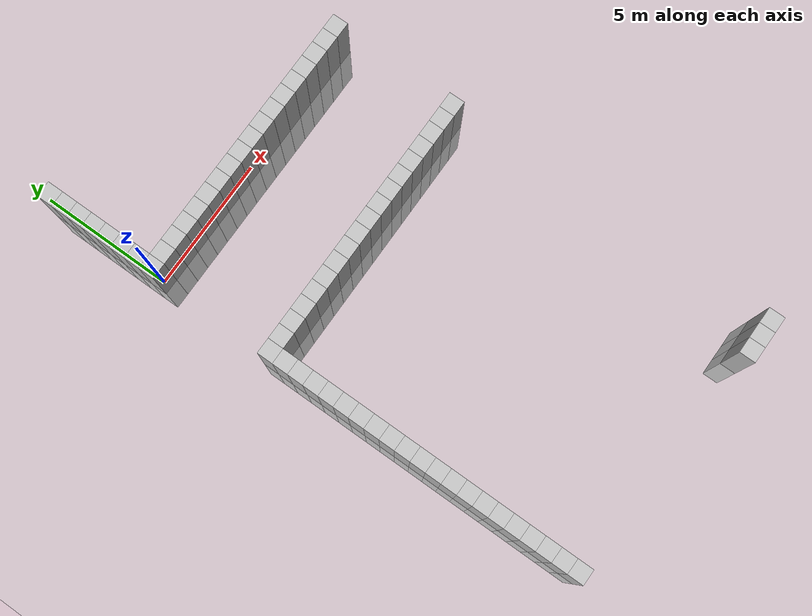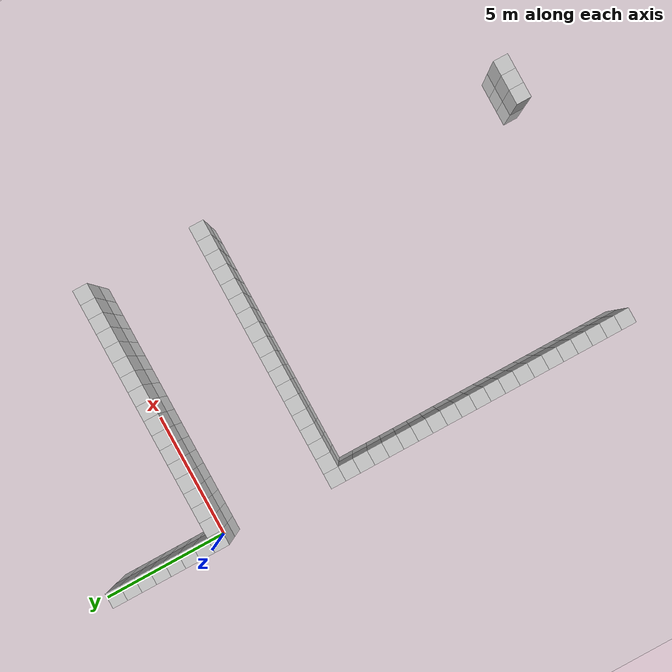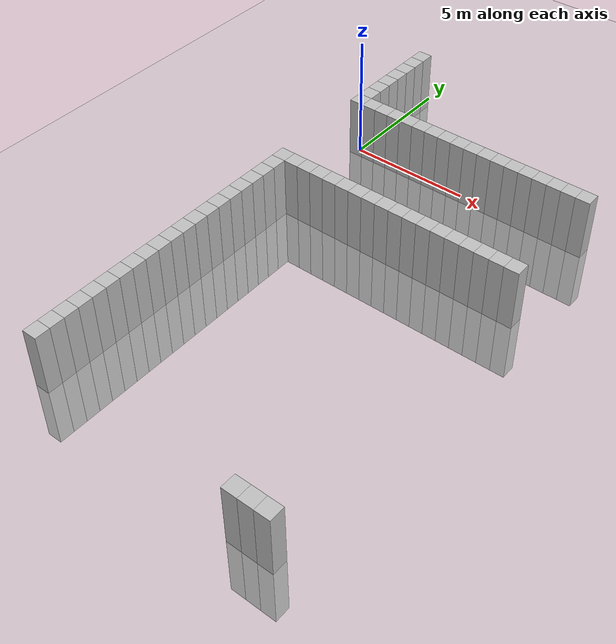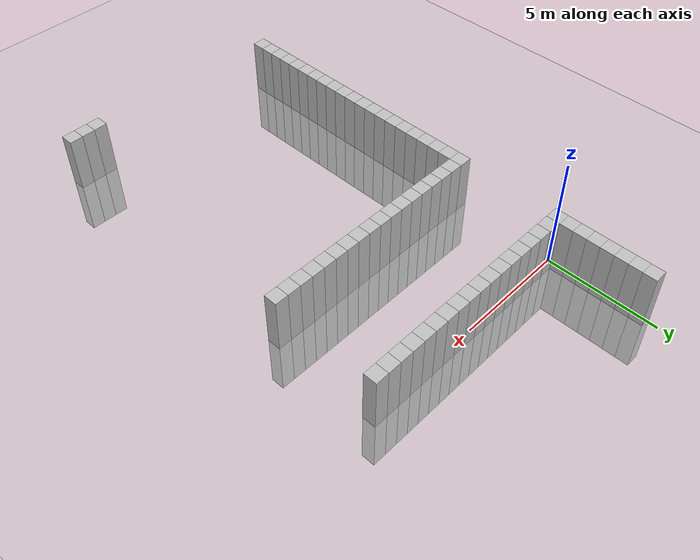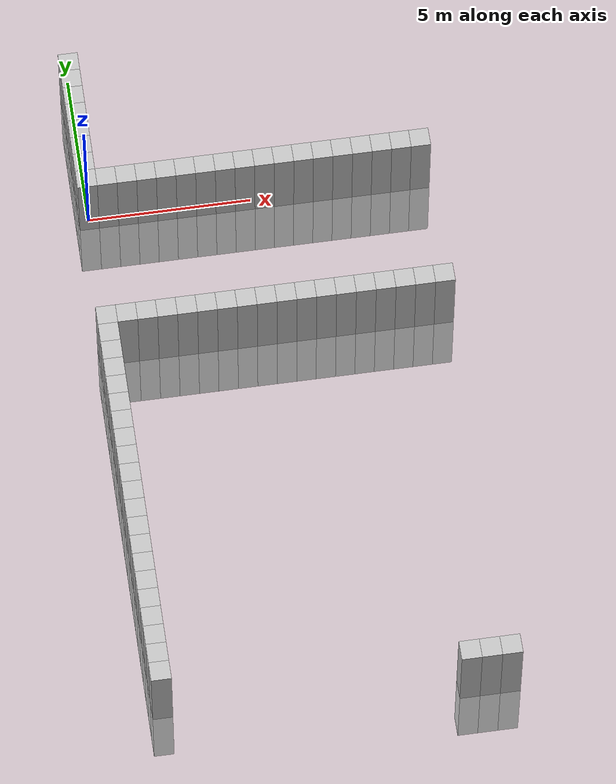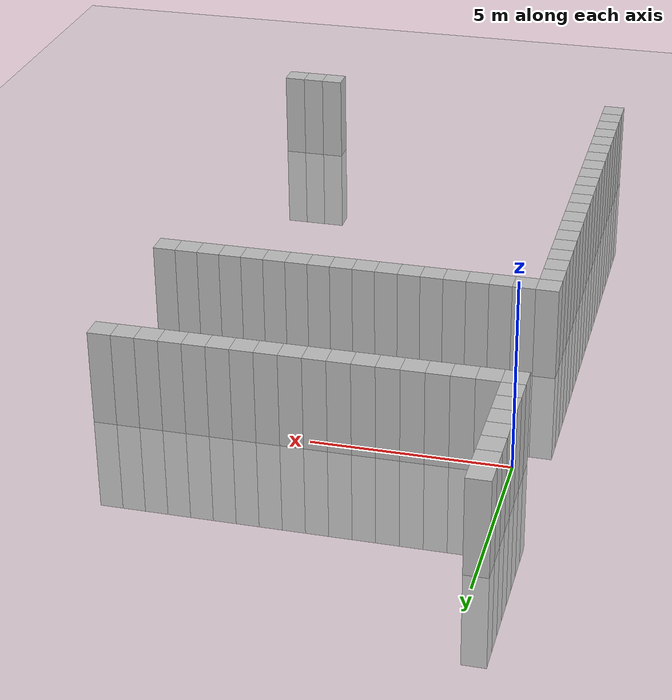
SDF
<sdf version="1.6">
 <world name="default">
  <model name="ground_plane">
   <static>1</static>
   <link name="link">
    <collision name="collision">
     <geometry><plane><normal>0 0 1</normal><size>100 100</size></plane></geometry>
     <surface><friction><ode><mu>100</mu><mu2>50</mu2></ode></friction></surface>
    </collision>
    <visual name="visual">
     <cast_shadows>0</cast_shadows>
     <geometry><plane><normal>0 0 1</normal><size>100 100</size></plane></geometry>
     <material>
      <script><uri>file://media/materials/scripts/gazebo.material</uri><name>Gazebo/Grey</name></script>
     </material>
    </visual>
   </link>
  </model>
  <model name="unit_cylinder_0">
   <static>1</static>
   <link name="link">
    <inertial>
     <mass>1</mass>
     <inertia><ixx>0.145833</ixx><ixy>0</ixy><ixz>0</ixz><iyy>0.145833</iyy><iyz>0</iyz><izz>0.125</izz></inertia>
    </inertial>
    <collision name="collision"><geometry><box><size>0.6 0.6 5</size></box></geometry></collision>
    <visual name="visual">
     <geometry><box><size>0.6 0.6 5</size></box></geometry>
     <material><ambient>0.753 0.753 0.753 1</ambient><diffuse>0.753 0.753 0.753 1</diffuse></material>
     <material>
      <script><name>Gazebo/Grey</name><uri>file://media/materials/scripts/gazebo.material</uri></script>
     </material>
    </visual>
   </link>
  </model>
  <model name="unit_cylinder_1">
   <static>1</static>
   <pose>0 0.6 0 0 -0 0</pose>
   <link name="link">
    <inertial>
     <mass>1</mass>
     <inertia><ixx>0.145833</ixx><ixy>0</ixy><ixz>0</ixz><iyy>0.145833</iyy><iyz>0</iyz><izz>0.125</izz></inertia>
    </inertial>
    <collision name="collision"><geometry><box><size>0.6 0.6 5</size></box></geometry></collision>
    <visual name="visual">
     <geometry><box><size>0.6 0.6 5</size></box></geometry>
     <material><ambient>0.753 0.753 0.753 1</ambient><diffuse>0.753 0.753 0.753 1</diffuse></material>
     <material>
      <script><name>Gazebo/Grey</name><uri>file://media/materials/scripts/gazebo.material</uri></script>
     </material>
    </visual>
   </link>
  </model>
  <model name="unit_cylinder_2">
   <static>1</static>
   <pose>0 1.2 0 0 -0 0</pose>
   <link name="link">
    <inertial>
     <mass>1</mass>
     <inertia><ixx>0.145833</ixx><ixy>0</ixy><ixz>0</ixz><iyy>0.145833</iyy><iyz>0</iyz><izz>0.125</izz></inertia>
    </inertial>
    <collision name="collision"><geometry><box><size>0.6 0.6 5</size></box></geometry></collision>
    <visual name="visual">
     <geometry><box><size>0.6 0.6 5</size></box></geometry>
     <material><ambient>0.753 0.753 0.753 1</ambient><diffuse>0.753 0.753 0.753 1</diffuse></material>
     <material>
      <script><name>Gazebo/Grey</name><uri>file://media/materials/scripts/gazebo.material</uri></script>
     </material>
    </visual>
   </link>
  </model>
  <model name="unit_cylinder_3">
   <static>1</static>
   <pose>0 1.8 0 0 -0 0</pose>
   <link name="link">
    <inertial>
     <mass>1</mass>
     <inertia><ixx>0.145833</ixx><ixy>0</ixy><ixz>0</ixz><iyy>0.145833</iyy><iyz>0</iyz><izz>0.125</izz></inertia>
    </inertial>
    <collision name="collision"><geometry><box><size>0.6 0.6 5</size></box></geometry></collision>
    <visual name="visual">
     <geometry><box><size>0.6 0.6 5</size></box></geometry>
     <material><ambient>0.753 0.753 0.753 1</ambient><diffuse>0.753 0.753 0.753 1</diffuse></material>
     <material>
      <script><name>Gazebo/Grey</name><uri>file://media/materials/scripts/gazebo.material</uri></script>
     </material>
    </visual>
   </link>
  </model>
  <model name="unit_cylinder_4">
   <static>1</static>
   <pose>0 2.4 0 0 -0 0</pose>
   <link name="link">
    <inertial>
     <mass>1</mass>
     <inertia><ixx>0.145833</ixx><ixy>0</ixy><ixz>0</ixz><iyy>0.145833</iyy><iyz>0</iyz><izz>0.125</izz></inertia>
    </inertial>
    <collision name="collision"><geometry><box><size>0.6 0.6 5</size></box></geometry></collision>
    <visual name="visual">
     <geometry><box><size>0.6 0.6 5</size></box></geometry>
     <material><ambient>0.753 0.753 0.753 1</ambient><diffuse>0.753 0.753 0.753 1</diffuse></material>
     <material>
      <script><name>Gazebo/Grey</name><uri>file://media/materials/scripts/gazebo.material</uri></script>
     </material>
    </visual>
   </link>
  </model>
  <model name="unit_cylinder_5">
   <static>1</static>
   <pose>0 3 0 0 -0 0</pose>
   <link name="link">
    <inertial>
     <mass>1</mass>
     <inertia><ixx>0.145833</ixx><ixy>0</ixy><ixz>0</ixz><iyy>0.145833</iyy><iyz>0</iyz><izz>0.125</izz></inertia>
    </inertial>
    <collision name="collision"><geometry><box><size>0.6 0.6 5</size></box></geometry></collision>
    <visual name="visual">
     <geometry><box><size>0.6 0.6 5</size></box></geometry>
     <material><ambient>0.753 0.753 0.753 1</ambient><diffuse>0.753 0.753 0.753 1</diffuse></material>
     <material>
      <script><name>Gazebo/Grey</name><uri>file://media/materials/scripts/gazebo.material</uri></script>
     </material>
    </visual>
   </link>
  </model>
  <model name="unit_cylinder_6">
   <static>1</static>
   <pose>0 3.6 0 0 -0 0</pose>
   <link name="link">
    <inertial>
     <mass>1</mass>
     <inertia><ixx>0.145833</ixx><ixy>0</ixy><ixz>0</ixz><iyy>0.145833</iyy><iyz>0</iyz><izz>0.125</izz></inertia>
    </inertial>
    <collision name="collision"><geometry><box><size>0.6 0.6 5</size></box></geometry></collision>
    <visual name="visual">
     <geometry><box><size>0.6 0.6 5</size></box></geometry>
     <material><ambient>0.753 0.753 0.753 1</ambient><diffuse>0.753 0.753 0.753 1</diffuse></material>
     <material>
      <script><name>Gazebo/Grey</name><uri>file://media/materials/scripts/gazebo.material</uri></script>
     </material>
    </visual>
   </link>
  </model>
  <model name="unit_cylinder_7">
   <static>1</static>
   <pose>0 4.2 0 0 -0 0</pose>
   <link name="link">
    <inertial>
     <mass>1</mass>
     <inertia><ixx>0.145833</ixx><ixy>0</ixy><ixz>0</ixz><iyy>0.145833</iyy><iyz>0</iyz><izz>0.125</izz></inertia>
    </inertial>
    <collision name="collision"><geometry><box><size>0.6 0.6 5</size></box></geometry></collision>
    <visual name="visual">
     <geometry><box><size>0.6 0.6 5</size></box></geometry>
     <material><ambient>0.753 0.753 0.753 1</ambient><diffuse>0.753 0.753 0.753 1</diffuse></material>
     <material>
      <script><name>Gazebo/Grey</name><uri>file://media/materials/scripts/gazebo.material</uri></script>
     </material>
    </visual>
   </link>
  </model>
  <model name="unit_cylinder_43">
   <static>1</static>
   <pose>0.6 0 0 0 -0 0</pose>
   <link name="link">
    <inertial>
     <mass>1</mass>
     <inertia><ixx>0.145833</ixx><ixy>0</ixy><ixz>0</ixz><iyy>0.145833</iyy><iyz>0</iyz><izz>0.125</izz></inertia>
    </inertial>
    <collision name="collision"><geometry><box><size>0.6 0.6 5</size></box></geometry></collision>
    <visual name="visual">
     <geometry><box><size>0.6 0.6 5</size></box></geometry>
     <material><ambient>0.753 0.753 0.753 1</ambient><diffuse>0.753 0.753 0.753 1</diffuse></material>
     <material>
      <script><name>Gazebo/Grey</name><uri>file://media/materials/scripts/gazebo.material</uri></script>
     </material>
    </visual>
   </link>
  </model>
  <model name="unit_cylinder_46">
   <static>1</static>
   <pose>1.2 0 0 0 -0 0</pose>
   <link name="link">
    <inertial>
     <mass>1</mass>
     <inertia><ixx>0.145833</ixx><ixy>0</ixy><ixz>0</ixz><iyy>0.145833</iyy><iyz>0</iyz><izz>0.125</izz></inertia>
    </inertial>
    <collision name="collision"><geometry><box><size>0.6 0.6 5</size></box></geometry></collision>
    <visual name="visual">
     <geometry><box><size>0.6 0.6 5</size></box></geometry>
     <material><ambient>0.753 0.753 0.753 1</ambient><diffuse>0.753 0.753 0.753 1</diffuse></material>
     <material>
      <script><name>Gazebo/Grey</name><uri>file://media/materials/scripts/gazebo.material</uri></script>
     </material>
    </visual>
   </link>
  </model>
  <model name="unit_cylinder_49">
   <static>1</static>
   <pose>1.8 0 0 0 -0 0</pose>
   <link name="link">
    <inertial>
     <mass>1</mass>
     <inertia><ixx>0.145833</ixx><ixy>0</ixy><ixz>0</ixz><iyy>0.145833</iyy><iyz>0</iyz><izz>0.125</izz></inertia>
    </inertial>
    <collision name="collision"><geometry><box><size>0.6 0.6 5</size></box></geometry></collision>
    <visual name="visual">
     <geometry><box><size>0.6 0.6 5</size></box></geometry>
     <material><ambient>0.753 0.753 0.753 1</ambient><diffuse>0.753 0.753 0.753 1</diffuse></material>
     <material>
      <script><name>Gazebo/Grey</name><uri>file://media/materials/scripts/gazebo.material</uri></script>
     </material>
    </visual>
   </link>
  </model>
  <model name="unit_cylinder_52">
   <static>1</static>
   <pose>2.4 0 0 0 -0 0</pose>
   <link name="link">
    <inertial>
     <mass>1</mass>
     <inertia><ixx>0.145833</ixx><ixy>0</ixy><ixz>0</ixz><iyy>0.145833</iyy><iyz>0</iyz><izz>0.125</izz></inertia>
    </inertial>
    <collision name="collision"><geometry><box><size>0.6 0.6 5</size></box></geometry></collision>
    <visual name="visual">
     <geometry><box><size>0.6 0.6 5</size></box></geometry>
     <material><ambient>0.753 0.753 0.753 1</ambient><diffuse>0.753 0.753 0.753 1</diffuse></material>
     <material>
      <script><name>Gazebo/Grey</name><uri>file://media/materials/scripts/gazebo.material</uri></script>
     </material>
    </visual>
   </link>
  </model>
  <model name="unit_cylinder_55">
   <static>1</static>
   <pose>3 0 0 0 -0 0</pose>
   <link name="link">
    <inertial>
     <mass>1</mass>
     <inertia><ixx>0.145833</ixx><ixy>0</ixy><ixz>0</ixz><iyy>0.145833</iyy><iyz>0</iyz><izz>0.125</izz></inertia>
    </inertial>
    <collision name="collision"><geometry><box><size>0.6 0.6 5</size></box></geometry></collision>
    <visual name="visual">
     <geometry><box><size>0.6 0.6 5</size></box></geometry>
     <material><ambient>0.753 0.753 0.753 1</ambient><diffuse>0.753 0.753 0.753 1</diffuse></material>
     <material>
      <script><name>Gazebo/Grey</name><uri>file://media/materials/scripts/gazebo.material</uri></script>
     </material>
    </visual>
   </link>
  </model>
  <model name="unit_cylinder_58">
   <static>1</static>
   <pose>3.6 0 0 0 -0 0</pose>
   <link name="link">
    <inertial>
     <mass>1</mass>
     <inertia><ixx>0.145833</ixx><ixy>0</ixy><ixz>0</ixz><iyy>0.145833</iyy><iyz>0</iyz><izz>0.125</izz></inertia>
    </inertial>
    <collision name="collision"><geometry><box><size>0.6 0.6 5</size></box></geometry></collision>
    <visual name="visual">
     <geometry><box><size>0.6 0.6 5</size></box></geometry>
     <material><ambient>0.753 0.753 0.753 1</ambient><diffuse>0.753 0.753 0.753 1</diffuse></material>
     <material>
      <script><name>Gazebo/Grey</name><uri>file://media/materials/scripts/gazebo.material</uri></script>
     </material>
    </visual>
   </link>
  </model>
  <model name="unit_cylinder_61">
   <static>1</static>
   <pose>4.2 0 0 0 -0 0</pose>
   <link name="link">
    <inertial>
     <mass>1</mass>
     <inertia><ixx>0.145833</ixx><ixy>0</ixy><ixz>0</ixz><iyy>0.145833</iyy><iyz>0</iyz><izz>0.125</izz></inertia>
    </inertial>
    <collision name="collision"><geometry><box><size>0.6 0.6 5</size></box></geometry></collision>
    <visual name="visual">
     <geometry><box><size>0.6 0.6 5</size></box></geometry>
     <material><ambient>0.753 0.753 0.753 1</ambient><diffuse>0.753 0.753 0.753 1</diffuse></material>
     <material>
      <script><name>Gazebo/Grey</name><uri>file://media/materials/scripts/gazebo.material</uri></script>
     </material>
    </visual>
   </link>
  </model>
  <model name="unit_cylinder_64">
   <static>1</static>
   <pose>4.8 0 0 0 -0 0</pose>
   <link name="link">
    <inertial>
     <mass>1</mass>
     <inertia><ixx>0.145833</ixx><ixy>0</ixy><ixz>0</ixz><iyy>0.145833</iyy><iyz>0</iyz><izz>0.125</izz></inertia>
    </inertial>
    <collision name="collision"><geometry><box><size>0.6 0.6 5</size></box></geometry></collision>
    <visual name="visual">
     <geometry><box><size>0.6 0.6 5</size></box></geometry>
     <material><ambient>0.753 0.753 0.753 1</ambient><diffuse>0.753 0.753 0.753 1</diffuse></material>
     <material>
      <script><name>Gazebo/Grey</name><uri>file://media/materials/scripts/gazebo.material</uri></script>
     </material>
    </visual>
   </link>
  </model>
  <model name="unit_cylinder_67">
   <static>1</static>
   <pose>5.4 0 0 0 -0 0</pose>
   <link name="link">
    <inertial>
     <mass>1</mass>
     <inertia><ixx>0.145833</ixx><ixy>0</ixy><ixz>0</ixz><iyy>0.145833</iyy><iyz>0</iyz><izz>0.125</izz></inertia>
    </inertial>
    <collision name="collision"><geometry><box><size>0.6 0.6 5</size></box></geometry></collision>
    <visual name="visual">
     <geometry><box><size>0.6 0.6 5</size></box></geometry>
     <material><ambient>0.753 0.753 0.753 1</ambient><diffuse>0.753 0.753 0.753 1</diffuse></material>
     <material>
      <script><name>Gazebo/Grey</name><uri>file://media/materials/scripts/gazebo.material</uri></script>
     </material>
    </visual>
   </link>
  </model>
  <model name="unit_cylinder_70">
   <static>1</static>
   <pose>6 0 0 0 -0 0</pose>
   <link name="link">
    <inertial>
     <mass>1</mass>
     <inertia><ixx>0.145833</ixx><ixy>0</ixy><ixz>0</ixz><iyy>0.145833</iyy><iyz>0</iyz><izz>0.125</izz></inertia>
    </inertial>
    <collision name="collision"><geometry><box><size>0.6 0.6 5</size></box></geometry></collision>
    <visual name="visual">
     <geometry><box><size>0.6 0.6 5</size></box></geometry>
     <material><ambient>0.753 0.753 0.753 1</ambient><diffuse>0.753 0.753 0.753 1</diffuse></material>
     <material>
      <script><name>Gazebo/Grey</name><uri>file://media/materials/scripts/gazebo.material</uri></script>
     </material>
    </visual>
   </link>
  </model>
  <model name="unit_cylinder_73">
   <static>1</static>
   <pose>6.6 0 0 0 -0 0</pose>
   <link name="link">
    <inertial>
     <mass>1</mass>
     <inertia><ixx>0.145833</ixx><ixy>0</ixy><ixz>0</ixz><iyy>0.145833</iyy><iyz>0</iyz><izz>0.125</izz></inertia>
    </inertial>
    <collision name="collision"><geometry><box><size>0.6 0.6 5</size></box></geometry></collision>
    <visual name="visual">
     <geometry><box><size>0.6 0.6 5</size></box></geometry>
     <material><ambient>0.753 0.753 0.753 1</ambient><diffuse>0.753 0.753 0.753 1</diffuse></material>
     <material>
      <script><name>Gazebo/Grey</name><uri>file://media/materials/scripts/gazebo.material</uri></script>
     </material>
    </visual>
   </link>
  </model>
  <model name="unit_cylinder_76">
   <static>1</static>
   <pose>7.2 0 0 0 -0 0</pose>
   <link name="link">
    <inertial>
     <mass>1</mass>
     <inertia><ixx>0.145833</ixx><ixy>0</ixy><ixz>0</ixz><iyy>0.145833</iyy><iyz>0</iyz><izz>0.125</izz></inertia>
    </inertial>
    <collision name="collision"><geometry><box><size>0.6 0.6 5</size></box></geometry></collision>
    <visual name="visual">
     <geometry><box><size>0.6 0.6 5</size></box></geometry>
     <material><ambient>0.753 0.753 0.753 1</ambient><diffuse>0.753 0.753 0.753 1</diffuse></material>
     <material>
      <script><name>Gazebo/Grey</name><uri>file://media/materials/scripts/gazebo.material</uri></script>
     </material>
    </visual>
   </link>
  </model>
  <model name="unit_cylinder_79">
   <static>1</static>
   <pose>7.8 0 0 0 -0 0</pose>
   <link name="link">
    <inertial>
     <mass>1</mass>
     <inertia><ixx>0.145833</ixx><ixy>0</ixy><ixz>0</ixz><iyy>0.145833</iyy><iyz>0</iyz><izz>0.125</izz></inertia>
    </inertial>
    <collision name="collision"><geometry><box><size>0.6 0.6 5</size></box></geometry></collision>
    <visual name="visual">
     <geometry><box><size>0.6 0.6 5</size></box></geometry>
     <material><ambient>0.753 0.753 0.753 1</ambient><diffuse>0.753 0.753 0.753 1</diffuse></material>
     <material>
      <script><name>Gazebo/Grey</name><uri>file://media/materials/scripts/gazebo.material</uri></script>
     </material>
    </visual>
   </link>
  </model>
  <model name="unit_cylinder_82">
   <static>1</static>
   <pose>8.4 0 0 0 -0 0</pose>
   <link name="link">
    <inertial>
     <mass>1</mass>
     <inertia><ixx>0.145833</ixx><ixy>0</ixy><ixz>0</ixz><iyy>0.145833</iyy><iyz>0</iyz><izz>0.125</izz></inertia>
    </inertial>
    <collision name="collision"><geometry><box><size>0.6 0.6 5</size></box></geometry></collision>
    <visual name="visual">
     <geometry><box><size>0.6 0.6 5</size></box></geometry>
     <material><ambient>0.753 0.753 0.753 1</ambient><diffuse>0.753 0.753 0.753 1</diffuse></material>
     <material>
      <script><name>Gazebo/Grey</name><uri>file://media/materials/scripts/gazebo.material</uri></script>
     </material>
    </visual>
   </link>
  </model>
  <model name="unit_cylinder_85">
   <static>1</static>
   <pose>9 0 0 0 -0 0</pose>
   <link name="link">
    <inertial>
     <mass>1</mass>
     <inertia><ixx>0.145833</ixx><ixy>0</ixy><ixz>0</ixz><iyy>0.145833</iyy><iyz>0</iyz><izz>0.125</izz></inertia>
    </inertial>
    <collision name="collision"><geometry><box><size>0.6 0.6 5</size></box></geometry></collision>
    <visual name="visual">
     <geometry><box><size>0.6 0.6 5</size></box></geometry>
     <material><ambient>0.753 0.753 0.753 1</ambient><diffuse>0.753 0.753 0.753 1</diffuse></material>
     <material>
      <script><name>Gazebo/Grey</name><uri>file://media/materials/scripts/gazebo.material</uri></script>
     </material>
    </visual>
   </link>
  </model>
  <model name="unit_cylinder_88">
   <static>1</static>
   <pose>9.6 0 0 0 -0 0</pose>
   <link name="link">
    <inertial>
     <mass>1</mass>
     <inertia><ixx>0.145833</ixx><ixy>0</ixy><ixz>0</ixz><iyy>0.145833</iyy><iyz>0</iyz><izz>0.125</izz></inertia>
    </inertial>
    <collision name="collision"><geometry><box><size>0.6 0.6 5</size></box></geometry></collision>
    <visual name="visual">
     <geometry><box><size>0.6 0.6 5</size></box></geometry>
     <material><ambient>0.753 0.753 0.753 1</ambient><diffuse>0.753 0.753 0.753 1</diffuse></material>
     <material>
      <script><name>Gazebo/Grey</name><uri>file://media/materials/scripts/gazebo.material</uri></script>
     </material>
    </visual>
   </link>
  </model>
  <model name="unit_cylinder_91">
   <static>1</static>
   <pose>10.2 0 0 0 -0 0</pose>
   <link name="link">
    <inertial>
     <mass>1</mass>
     <inertia><ixx>0.145833</ixx><ixy>0</ixy><ixz>0</ixz><iyy>0.145833</iyy><iyz>0</iyz><izz>0.125</izz></inertia>
    </inertial>
    <collision name="collision"><geometry><box><size>0.6 0.6 5</size></box></geometry></collision>
    <visual name="visual">
     <geometry><box><size>0.6 0.6 5</size></box></geometry>
     <material><ambient>0.753 0.753 0.753 1</ambient><diffuse>0.753 0.753 0.753 1</diffuse></material>
     <material>
      <script><name>Gazebo/Grey</name><uri>file://media/materials/scripts/gazebo.material</uri></script>
     </material>
    </visual>
   </link>
  </model>
  <model name="unit_cylinder_709">
   <static>1</static>
   <pose>0 -16.8 0 0 -0 0</pose>
   <link name="link">
    <inertial>
     <mass>1</mass>
     <inertia><ixx>0.145833</ixx><ixy>0</ixy><ixz>0</ixz><iyy>0.145833</iyy><iyz>0</iyz><izz>0.125</izz></inertia>
    </inertial>
    <collision name="collision"><geometry><box><size>0.6 0.6 5</size></box></geometry></collision>
    <visual name="visual">
     <geometry><box><size>0.6 0.6 5</size></box></geometry>
     <material><ambient>0.753 0.753 0.753 1</ambient><diffuse>0.753 0.753 0.753 1</diffuse></material>
     <material>
      <script><name>Gazebo/Grey</name><uri>file://media/materials/scripts/gazebo.material</uri></script>
     </material>
    </visual>
   </link>
  </model>
  <model name="unit_cylinder_710">
   <static>1</static>
   <pose>0 -16.2 0 0 -0 0</pose>
   <link name="link">
    <inertial>
     <mass>1</mass>
     <inertia><ixx>0.145833</ixx><ixy>0</ixy><ixz>0</ixz><iyy>0.145833</iyy><iyz>0</iyz><izz>0.125</izz></inertia>
    </inertial>
    <collision name="collision"><geometry><box><size>0.6 0.6 5</size></box></geometry></collision>
    <visual name="visual">
     <geometry><box><size>0.6 0.6 5</size></box></geometry>
     <material><ambient>0.753 0.753 0.753 1</ambient><diffuse>0.753 0.753 0.753 1</diffuse></material>
     <material>
      <script><name>Gazebo/Grey</name><uri>file://media/materials/scripts/gazebo.material</uri></script>
     </material>
    </visual>
   </link>
  </model>
  <model name="unit_cylinder_711">
   <static>1</static>
   <pose>0 -15.6 0 0 -0 0</pose>
   <link name="link">
    <inertial>
     <mass>1</mass>
     <inertia><ixx>0.145833</ixx><ixy>0</ixy><ixz>0</ixz><iyy>0.145833</iyy><iyz>0</iyz><izz>0.125</izz></inertia>
    </inertial>
    <collision name="collision"><geometry><box><size>0.6 0.6 5</size></box></geometry></collision>
    <visual name="visual">
     <geometry><box><size>0.6 0.6 5</size></box></geometry>
     <material><ambient>0.753 0.753 0.753 1</ambient><diffuse>0.753 0.753 0.753 1</diffuse></material>
     <material>
      <script><name>Gazebo/Grey</name><uri>file://media/materials/scripts/gazebo.material</uri></script>
     </material>
    </visual>
   </link>
  </model>
  <model name="unit_cylinder_712">
   <static>1</static>
   <pose>0 -15 0 0 -0 0</pose>
   <link name="link">
    <inertial>
     <mass>1</mass>
     <inertia><ixx>0.145833</ixx><ixy>0</ixy><ixz>0</ixz><iyy>0.145833</iyy><iyz>0</iyz><izz>0.125</izz></inertia>
    </inertial>
    <collision name="collision"><geometry><box><size>0.6 0.6 5</size></box></geometry></collision>
    <visual name="visual">
     <geometry><box><size>0.6 0.6 5</size></box></geometry>
     <material><ambient>0.753 0.753 0.753 1</ambient><diffuse>0.753 0.753 0.753 1</diffuse></material>
     <material>
      <script><name>Gazebo/Grey</name><uri>file://media/materials/scripts/gazebo.material</uri></script>
     </material>
    </visual>
   </link>
  </model>
  <model name="unit_cylinder_713">
   <static>1</static>
   <pose>0 -14.4 0 0 -0 0</pose>
   <link name="link">
    <inertial>
     <mass>1</mass>
     <inertia><ixx>0.145833</ixx><ixy>0</ixy><ixz>0</ixz><iyy>0.145833</iyy><iyz>0</iyz><izz>0.125</izz></inertia>
    </inertial>
    <collision name="collision"><geometry><box><size>0.6 0.6 5</size></box></geometry></collision>
    <visual name="visual">
     <geometry><box><size>0.6 0.6 5</size></box></geometry>
     <material><ambient>0.753 0.753 0.753 1</ambient><diffuse>0.753 0.753 0.753 1</diffuse></material>
     <material>
      <script><name>Gazebo/Grey</name><uri>file://media/materials/scripts/gazebo.material</uri></script>
     </material>
    </visual>
   </link>
  </model>
  <model name="unit_cylinder_714">
   <static>1</static>
   <pose>0 -13.8 0 0 -0 0</pose>
   <link name="link">
    <inertial>
     <mass>1</mass>
     <inertia><ixx>0.145833</ixx><ixy>0</ixy><ixz>0</ixz><iyy>0.145833</iyy><iyz>0</iyz><izz>0.125</izz></inertia>
    </inertial>
    <collision name="collision"><geometry><box><size>0.6 0.6 5</size></box></geometry></collision>
    <visual name="visual">
     <geometry><box><size>0.6 0.6 5</size></box></geometry>
     <material><ambient>0.753 0.753 0.753 1</ambient><diffuse>0.753 0.753 0.753 1</diffuse></material>
     <material>
      <script><name>Gazebo/Grey</name><uri>file://media/materials/scripts/gazebo.material</uri></script>
     </material>
    </visual>
   </link>
  </model>
  <model name="unit_cylinder_715">
   <static>1</static>
   <pose>0 -13.2 0 0 -0 0</pose>
   <link name="link">
    <inertial>
     <mass>1</mass>
     <inertia><ixx>0.145833</ixx><ixy>0</ixy><ixz>0</ixz><iyy>0.145833</iyy><iyz>0</iyz><izz>0.125</izz></inertia>
    </inertial>
    <collision name="collision"><geometry><box><size>0.6 0.6 5</size></box></geometry></collision>
    <visual name="visual">
     <geometry><box><size>0.6 0.6 5</size></box></geometry>
     <material><ambient>0.753 0.753 0.753 1</ambient><diffuse>0.753 0.753 0.753 1</diffuse></material>
     <material>
      <script><name>Gazebo/Grey</name><uri>file://media/materials/scripts/gazebo.material</uri></script>
     </material>
    </visual>
   </link>
  </model>
  <model name="unit_cylinder_716">
   <static>1</static>
   <pose>0 -12.6 0 0 -0 0</pose>
   <link name="link">
    <inertial>
     <mass>1</mass>
     <inertia><ixx>0.145833</ixx><ixy>0</ixy><ixz>0</ixz><iyy>0.145833</iyy><iyz>0</iyz><izz>0.125</izz></inertia>
    </inertial>
    <collision name="collision"><geometry><box><size>0.6 0.6 5</size></box></geometry></collision>
    <visual name="visual">
     <geometry><box><size>0.6 0.6 5</size></box></geometry>
     <material><ambient>0.753 0.753 0.753 1</ambient><diffuse>0.753 0.753 0.753 1</diffuse></material>
     <material>
      <script><name>Gazebo/Grey</name><uri>file://media/materials/scripts/gazebo.material</uri></script>
     </material>
    </visual>
   </link>
  </model>
  <model name="unit_cylinder_717">
   <static>1</static>
   <pose>0 -12 0 0 -0 0</pose>
   <link name="link">
    <inertial>
     <mass>1</mass>
     <inertia><ixx>0.145833</ixx><ixy>0</ixy><ixz>0</ixz><iyy>0.145833</iyy><iyz>0</iyz><izz>0.125</izz></inertia>
    </inertial>
    <collision name="collision"><geometry><box><size>0.6 0.6 5</size></box></geometry></collision>
    <visual name="visual">
     <geometry><box><size>0.6 0.6 5</size></box></geometry>
     <material><ambient>0.753 0.753 0.753 1</ambient><diffuse>0.753 0.753 0.753 1</diffuse></material>
     <material>
      <script><name>Gazebo/Grey</name><uri>file://media/materials/scripts/gazebo.material</uri></script>
     </material>
    </visual>
   </link>
  </model>
  <model name="unit_cylinder_718">
   <static>1</static>
   <pose>0 -11.4 0 0 -0 0</pose>
   <link name="link">
    <inertial>
     <mass>1</mass>
     <inertia><ixx>0.145833</ixx><ixy>0</ixy><ixz>0</ixz><iyy>0.145833</iyy><iyz>0</iyz><izz>0.125</izz></inertia>
    </inertial>
    <collision name="collision"><geometry><box><size>0.6 0.6 5</size></box></geometry></collision>
    <visual name="visual">
     <geometry><box><size>0.6 0.6 5</size></box></geometry>
     <material><ambient>0.753 0.753 0.753 1</ambient><diffuse>0.753 0.753 0.753 1</diffuse></material>
     <material>
      <script><name>Gazebo/Grey</name><uri>file://media/materials/scripts/gazebo.material</uri></script>
     </material>
    </visual>
   </link>
  </model>
  <model name="unit_cylinder_719">
   <static>1</static>
   <pose>0 -10.8 0 0 -0 0</pose>
   <link name="link">
    <inertial>
     <mass>1</mass>
     <inertia><ixx>0.145833</ixx><ixy>0</ixy><ixz>0</ixz><iyy>0.145833</iyy><iyz>0</iyz><izz>0.125</izz></inertia>
    </inertial>
    <collision name="collision"><geometry><box><size>0.6 0.6 5</size></box></geometry></collision>
    <visual name="visual">
     <geometry><box><size>0.6 0.6 5</size></box></geometry>
     <material><ambient>0.753 0.753 0.753 1</ambient><diffuse>0.753 0.753 0.753 1</diffuse></material>
     <material>
      <script><name>Gazebo/Grey</name><uri>file://media/materials/scripts/gazebo.material</uri></script>
     </material>
    </visual>
   </link>
  </model>
  <model name="unit_cylinder_720">
   <static>1</static>
   <pose>0 -10.2 0 0 -0 0</pose>
   <link name="link">
    <inertial>
     <mass>1</mass>
     <inertia><ixx>0.145833</ixx><ixy>0</ixy><ixz>0</ixz><iyy>0.145833</iyy><iyz>0</iyz><izz>0.125</izz></inertia>
    </inertial>
    <collision name="collision"><geometry><box><size>0.6 0.6 5</size></box></geometry></collision>
    <visual name="visual">
     <geometry><box><size>0.6 0.6 5</size></box></geometry>
     <material><ambient>0.753 0.753 0.753 1</ambient><diffuse>0.753 0.753 0.753 1</diffuse></material>
     <material>
      <script><name>Gazebo/Grey</name><uri>file://media/materials/scripts/gazebo.material</uri></script>
     </material>
    </visual>
   </link>
  </model>
  <model name="unit_cylinder_721">
   <static>1</static>
   <pose>0 -9.6 0 0 -0 0</pose>
   <link name="link">
    <inertial>
     <mass>1</mass>
     <inertia><ixx>0.145833</ixx><ixy>0</ixy><ixz>0</ixz><iyy>0.145833</iyy><iyz>0</iyz><izz>0.125</izz></inertia>
    </inertial>
    <collision name="collision"><geometry><box><size>0.6 0.6 5</size></box></geometry></collision>
    <visual name="visual">
     <geometry><box><size>0.6 0.6 5</size></box></geometry>
     <material><ambient>0.753 0.753 0.753 1</ambient><diffuse>0.753 0.753 0.753 1</diffuse></material>
     <material>
      <script><name>Gazebo/Grey</name><uri>file://media/materials/scripts/gazebo.material</uri></script>
     </material>
    </visual>
   </link>
  </model>
  <model name="unit_cylinder_722">
   <static>1</static>
   <pose>0 -9 0 0 -0 0</pose>
   <link name="link">
    <inertial>
     <mass>1</mass>
     <inertia><ixx>0.145833</ixx><ixy>0</ixy><ixz>0</ixz><iyy>0.145833</iyy><iyz>0</iyz><izz>0.125</izz></inertia>
    </inertial>
    <collision name="collision"><geometry><box><size>0.6 0.6 5</size></box></geometry></collision>
    <visual name="visual">
     <geometry><box><size>0.6 0.6 5</size></box></geometry>
     <material><ambient>0.753 0.753 0.753 1</ambient><diffuse>0.753 0.753 0.753 1</diffuse></material>
     <material>
      <script><name>Gazebo/Grey</name><uri>file://media/materials/scripts/gazebo.material</uri></script>
     </material>
    </visual>
   </link>
  </model>
  <model name="unit_cylinder_723">
   <static>1</static>
   <pose>0 -8.4 0 0 -0 0</pose>
   <link name="link">
    <inertial>
     <mass>1</mass>
     <inertia><ixx>0.145833</ixx><ixy>0</ixy><ixz>0</ixz><iyy>0.145833</iyy><iyz>0</iyz><izz>0.125</izz></inertia>
    </inertial>
    <collision name="collision"><geometry><box><size>0.6 0.6 5</size></box></geometry></collision>
    <visual name="visual">
     <geometry><box><size>0.6 0.6 5</size></box></geometry>
     <material><ambient>0.753 0.753 0.753 1</ambient><diffuse>0.753 0.753 0.753 1</diffuse></material>
     <material>
      <script><name>Gazebo/Grey</name><uri>file://media/materials/scripts/gazebo.material</uri></script>
     </material>
    </visual>
   </link>
  </model>
  <model name="unit_cylinder_724">
   <static>1</static>
   <pose>0 -7.8 0 0 -0 0</pose>
   <link name="link">
    <inertial>
     <mass>1</mass>
     <inertia><ixx>0.145833</ixx><ixy>0</ixy><ixz>0</ixz><iyy>0.145833</iyy><iyz>0</iyz><izz>0.125</izz></inertia>
    </inertial>
    <collision name="collision"><geometry><box><size>0.6 0.6 5</size></box></geometry></collision>
    <visual name="visual">
     <geometry><box><size>0.6 0.6 5</size></box></geometry>
     <material><ambient>0.753 0.753 0.753 1</ambient><diffuse>0.753 0.753 0.753 1</diffuse></material>
     <material>
      <script><name>Gazebo/Grey</name><uri>file://media/materials/scripts/gazebo.material</uri></script>
     </material>
    </visual>
   </link>
  </model>
  <model name="unit_cylinder_725">
   <static>1</static>
   <pose>0 -7.2 0 0 -0 0</pose>
   <link name="link">
    <inertial>
     <mass>1</mass>
     <inertia><ixx>0.145833</ixx><ixy>0</ixy><ixz>0</ixz><iyy>0.145833</iyy><iyz>0</iyz><izz>0.125</izz></inertia>
    </inertial>
    <collision name="collision"><geometry><box><size>0.6 0.6 5</size></box></geometry></collision>
    <visual name="visual">
     <geometry><box><size>0.6 0.6 5</size></box></geometry>
     <material><ambient>0.753 0.753 0.753 1</ambient><diffuse>0.753 0.753 0.753 1</diffuse></material>
     <material>
      <script><name>Gazebo/Grey</name><uri>file://media/materials/scripts/gazebo.material</uri></script>
     </material>
    </visual>
   </link>
  </model>
  <model name="unit_cylinder_726">
   <static>1</static>
   <pose>0 -6.6 0 0 -0 0</pose>
   <link name="link">
    <inertial>
     <mass>1</mass>
     <inertia><ixx>0.145833</ixx><ixy>0</ixy><ixz>0</ixz><iyy>0.145833</iyy><iyz>0</iyz><izz>0.125</izz></inertia>
    </inertial>
    <collision name="collision"><geometry><box><size>0.6 0.6 5</size></box></geometry></collision>
    <visual name="visual">
     <geometry><box><size>0.6 0.6 5</size></box></geometry>
     <material><ambient>0.753 0.753 0.753 1</ambient><diffuse>0.753 0.753 0.753 1</diffuse></material>
     <material>
      <script><name>Gazebo/Grey</name><uri>file://media/materials/scripts/gazebo.material</uri></script>
     </material>
    </visual>
   </link>
  </model>
  <model name="unit_cylinder_727">
   <static>1</static>
   <pose>0 -6 0 0 -0 0</pose>
   <link name="link">
    <inertial>
     <mass>1</mass>
     <inertia><ixx>0.145833</ixx><ixy>0</ixy><ixz>0</ixz><iyy>0.145833</iyy><iyz>0</iyz><izz>0.125</izz></inertia>
    </inertial>
    <collision name="collision"><geometry><box><size>0.6 0.6 5</size></box></geometry></collision>
    <visual name="visual">
     <geometry><box><size>0.6 0.6 5</size></box></geometry>
     <material><ambient>0.753 0.753 0.753 1</ambient><diffuse>0.753 0.753 0.753 1</diffuse></material>
     <material>
      <script><name>Gazebo/Grey</name><uri>file://media/materials/scripts/gazebo.material</uri></script>
     </material>
    </visual>
   </link>
  </model>
  <model name="unit_cylinder_728">
   <static>1</static>
   <pose>0 -5.4 0 0 -0 0</pose>
   <link name="link">
    <inertial>
     <mass>1</mass>
     <inertia><ixx>0.145833</ixx><ixy>0</ixy><ixz>0</ixz><iyy>0.145833</iyy><iyz>0</iyz><izz>0.125</izz></inertia>
    </inertial>
    <collision name="collision"><geometry><box><size>0.6 0.6 5</size></box></geometry></collision>
    <visual name="visual">
     <geometry><box><size>0.6 0.6 5</size></box></geometry>
     <material><ambient>0.753 0.753 0.753 1</ambient><diffuse>0.753 0.753 0.753 1</diffuse></material>
     <material>
      <script><name>Gazebo/Grey</name><uri>file://media/materials/scripts/gazebo.material</uri></script>
     </material>
    </visual>
   </link>
  </model>
  <model name="unit_cylinder_729">
   <static>1</static>
   <pose>0 -4.8 0 0 -0 0</pose>
   <link name="link">
    <inertial>
     <mass>1</mass>
     <inertia><ixx>0.145833</ixx><ixy>0</ixy><ixz>0</ixz><iyy>0.145833</iyy><iyz>0</iyz><izz>0.125</izz></inertia>
    </inertial>
    <collision name="collision"><geometry><box><size>0.6 0.6 5</size></box></geometry></collision>
    <visual name="visual">
     <geometry><box><size>0.6 0.6 5</size></box></geometry>
     <material><ambient>0.753 0.753 0.753 1</ambient><diffuse>0.753 0.753 0.753 1</diffuse></material>
     <material>
      <script><name>Gazebo/Grey</name><uri>file://media/materials/scripts/gazebo.material</uri></script>
     </material>
    </visual>
   </link>
  </model>
  <model name="unit_cylinder_732">
   <static>1</static>
   <pose>0.6 -4.8 0 0 -0 0</pose>
   <link name="link">
    <inertial>
     <mass>1</mass>
     <inertia><ixx>0.145833</ixx><ixy>0</ixy><ixz>0</ixz><iyy>0.145833</iyy><iyz>0</iyz><izz>0.125</izz></inertia>
    </inertial>
    <collision name="collision"><geometry><box><size>0.6 0.6 5</size></box></geometry></collision>
    <visual name="visual">
     <geometry><box><size>0.6 0.6 5</size></box></geometry>
     <material><ambient>0.753 0.753 0.753 1</ambient><diffuse>0.753 0.753 0.753 1</diffuse></material>
     <material>
      <script><name>Gazebo/Grey</name><uri>file://media/materials/scripts/gazebo.material</uri></script>
     </material>
    </visual>
   </link>
  </model>
  <model name="unit_cylinder_735">
   <static>1</static>
   <pose>1.2 -4.8 0 0 -0 0</pose>
   <link name="link">
    <inertial>
     <mass>1</mass>
     <inertia><ixx>0.145833</ixx><ixy>0</ixy><ixz>0</ixz><iyy>0.145833</iyy><iyz>0</iyz><izz>0.125</izz></inertia>
    </inertial>
    <collision name="collision"><geometry><box><size>0.6 0.6 5</size></box></geometry></collision>
    <visual name="visual">
     <geometry><box><size>0.6 0.6 5</size></box></geometry>
     <material><ambient>0.753 0.753 0.753 1</ambient><diffuse>0.753 0.753 0.753 1</diffuse></material>
     <material>
      <script><name>Gazebo/Grey</name><uri>file://media/materials/scripts/gazebo.material</uri></script>
     </material>
    </visual>
   </link>
  </model>
  <model name="unit_cylinder_738">
   <static>1</static>
   <pose>1.8 -4.8 0 0 -0 0</pose>
   <link name="link">
    <inertial>
     <mass>1</mass>
     <inertia><ixx>0.145833</ixx><ixy>0</ixy><ixz>0</ixz><iyy>0.145833</iyy><iyz>0</iyz><izz>0.125</izz></inertia>
    </inertial>
    <collision name="collision"><geometry><box><size>0.6 0.6 5</size></box></geometry></collision>
    <visual name="visual">
     <geometry><box><size>0.6 0.6 5</size></box></geometry>
     <material><ambient>0.753 0.753 0.753 1</ambient><diffuse>0.753 0.753 0.753 1</diffuse></material>
     <material>
      <script><name>Gazebo/Grey</name><uri>file://media/materials/scripts/gazebo.material</uri></script>
     </material>
    </visual>
   </link>
  </model>
  <model name="unit_cylinder_741">
   <static>1</static>
   <pose>2.4 -4.8 0 0 -0 0</pose>
   <link name="link">
    <inertial>
     <mass>1</mass>
     <inertia><ixx>0.145833</ixx><ixy>0</ixy><ixz>0</ixz><iyy>0.145833</iyy><iyz>0</iyz><izz>0.125</izz></inertia>
    </inertial>
    <collision name="collision"><geometry><box><size>0.6 0.6 5</size></box></geometry></collision>
    <visual name="visual">
     <geometry><box><size>0.6 0.6 5</size></box></geometry>
     <material><ambient>0.753 0.753 0.753 1</ambient><diffuse>0.753 0.753 0.753 1</diffuse></material>
     <material>
      <script><name>Gazebo/Grey</name><uri>file://media/materials/scripts/gazebo.material</uri></script>
     </material>
    </visual>
   </link>
  </model>
  <model name="unit_cylinder_744">
   <static>1</static>
   <pose>3 -4.8 0 0 -0 0</pose>
   <link name="link">
    <inertial>
     <mass>1</mass>
     <inertia><ixx>0.145833</ixx><ixy>0</ixy><ixz>0</ixz><iyy>0.145833</iyy><iyz>0</iyz><izz>0.125</izz></inertia>
    </inertial>
    <collision name="collision"><geometry><box><size>0.6 0.6 5</size></box></geometry></collision>
    <visual name="visual">
     <geometry><box><size>0.6 0.6 5</size></box></geometry>
     <material><ambient>0.753 0.753 0.753 1</ambient><diffuse>0.753 0.753 0.753 1</diffuse></material>
     <material>
      <script><name>Gazebo/Grey</name><uri>file://media/materials/scripts/gazebo.material</uri></script>
     </material>
    </visual>
   </link>
  </model>
  <model name="unit_cylinder_747">
   <static>1</static>
   <pose>3.6 -4.8 0 0 -0 0</pose>
   <link name="link">
    <inertial>
     <mass>1</mass>
     <inertia><ixx>0.145833</ixx><ixy>0</ixy><ixz>0</ixz><iyy>0.145833</iyy><iyz>0</iyz><izz>0.125</izz></inertia>
    </inertial>
    <collision name="collision"><geometry><box><size>0.6 0.6 5</size></box></geometry></collision>
    <visual name="visual">
     <geometry><box><size>0.6 0.6 5</size></box></geometry>
     <material><ambient>0.753 0.753 0.753 1</ambient><diffuse>0.753 0.753 0.753 1</diffuse></material>
     <material>
      <script><name>Gazebo/Grey</name><uri>file://media/materials/scripts/gazebo.material</uri></script>
     </material>
    </visual>
   </link>
  </model>
  <model name="unit_cylinder_750">
   <static>1</static>
   <pose>4.2 -4.8 0 0 -0 0</pose>
   <link name="link">
    <inertial>
     <mass>1</mass>
     <inertia><ixx>0.145833</ixx><ixy>0</ixy><ixz>0</ixz><iyy>0.145833</iyy><iyz>0</iyz><izz>0.125</izz></inertia>
    </inertial>
    <collision name="collision"><geometry><box><size>0.6 0.6 5</size></box></geometry></collision>
    <visual name="visual">
     <geometry><box><size>0.6 0.6 5</size></box></geometry>
     <material><ambient>0.753 0.753 0.753 1</ambient><diffuse>0.753 0.753 0.753 1</diffuse></material>
     <material>
      <script><name>Gazebo/Grey</name><uri>file://media/materials/scripts/gazebo.material</uri></script>
     </material>
    </visual>
   </link>
  </model>
  <model name="unit_cylinder_753">
   <static>1</static>
   <pose>4.8 -4.8 0 0 -0 0</pose>
   <link name="link">
    <inertial>
     <mass>1</mass>
     <inertia><ixx>0.145833</ixx><ixy>0</ixy><ixz>0</ixz><iyy>0.145833</iyy><iyz>0</iyz><izz>0.125</izz></inertia>
    </inertial>
    <collision name="collision"><geometry><box><size>0.6 0.6 5</size></box></geometry></collision>
    <visual name="visual">
     <geometry><box><size>0.6 0.6 5</size></box></geometry>
     <material><ambient>0.753 0.753 0.753 1</ambient><diffuse>0.753 0.753 0.753 1</diffuse></material>
     <material>
      <script><name>Gazebo/Grey</name><uri>file://media/materials/scripts/gazebo.material</uri></script>
     </material>
    </visual>
   </link>
  </model>
  <model name="unit_cylinder_756">
   <static>1</static>
   <pose>5.4 -4.8 0 0 -0 0</pose>
   <link name="link">
    <inertial>
     <mass>1</mass>
     <inertia><ixx>0.145833</ixx><ixy>0</ixy><ixz>0</ixz><iyy>0.145833</iyy><iyz>0</iyz><izz>0.125</izz></inertia>
    </inertial>
    <collision name="collision"><geometry><box><size>0.6 0.6 5</size></box></geometry></collision>
    <visual name="visual">
     <geometry><box><size>0.6 0.6 5</size></box></geometry>
     <material><ambient>0.753 0.753 0.753 1</ambient><diffuse>0.753 0.753 0.753 1</diffuse></material>
     <material>
      <script><name>Gazebo/Grey</name><uri>file://media/materials/scripts/gazebo.material</uri></script>
     </material>
    </visual>
   </link>
  </model>
  <model name="unit_cylinder_759">
   <static>1</static>
   <pose>6 -4.8 0 0 -0 0</pose>
   <link name="link">
    <inertial>
     <mass>1</mass>
     <inertia><ixx>0.145833</ixx><ixy>0</ixy><ixz>0</ixz><iyy>0.145833</iyy><iyz>0</iyz><izz>0.125</izz></inertia>
    </inertial>
    <collision name="collision"><geometry><box><size>0.6 0.6 5</size></box></geometry></collision>
    <visual name="visual">
     <geometry><box><size>0.6 0.6 5</size></box></geometry>
     <material><ambient>0.753 0.753 0.753 1</ambient><diffuse>0.753 0.753 0.753 1</diffuse></material>
     <material>
      <script><name>Gazebo/Grey</name><uri>file://media/materials/scripts/gazebo.material</uri></script>
     </material>
    </visual>
   </link>
  </model>
  <model name="unit_cylinder_762">
   <static>1</static>
   <pose>6.6 -4.8 0 0 -0 0</pose>
   <link name="link">
    <inertial>
     <mass>1</mass>
     <inertia><ixx>0.145833</ixx><ixy>0</ixy><ixz>0</ixz><iyy>0.145833</iyy><iyz>0</iyz><izz>0.125</izz></inertia>
    </inertial>
    <collision name="collision"><geometry><box><size>0.6 0.6 5</size></box></geometry></collision>
    <visual name="visual">
     <geometry><box><size>0.6 0.6 5</size></box></geometry>
     <material><ambient>0.753 0.753 0.753 1</ambient><diffuse>0.753 0.753 0.753 1</diffuse></material>
     <material>
      <script><name>Gazebo/Grey</name><uri>file://media/materials/scripts/gazebo.material</uri></script>
     </material>
    </visual>
   </link>
  </model>
  <model name="unit_cylinder_765">
   <static>1</static>
   <pose>7.2 -4.8 0 0 -0 0</pose>
   <link name="link">
    <inertial>
     <mass>1</mass>
     <inertia><ixx>0.145833</ixx><ixy>0</ixy><ixz>0</ixz><iyy>0.145833</iyy><iyz>0</iyz><izz>0.125</izz></inertia>
    </inertial>
    <collision name="collision"><geometry><box><size>0.6 0.6 5</size></box></geometry></collision>
    <visual name="visual">
     <geometry><box><size>0.6 0.6 5</size></box></geometry>
     <material><ambient>0.753 0.753 0.753 1</ambient><diffuse>0.753 0.753 0.753 1</diffuse></material>
     <material>
      <script><name>Gazebo/Grey</name><uri>file://media/materials/scripts/gazebo.material</uri></script>
     </material>
    </visual>
   </link>
  </model>
  <model name="unit_cylinder_768">
   <static>1</static>
   <pose>7.8 -4.8 0 0 -0 0</pose>
   <link name="link">
    <inertial>
     <mass>1</mass>
     <inertia><ixx>0.145833</ixx><ixy>0</ixy><ixz>0</ixz><iyy>0.145833</iyy><iyz>0</iyz><izz>0.125</izz></inertia>
    </inertial>
    <collision name="collision"><geometry><box><size>0.6 0.6 5</size></box></geometry></collision>
    <visual name="visual">
     <geometry><box><size>0.6 0.6 5</size></box></geometry>
     <material><ambient>0.753 0.753 0.753 1</ambient><diffuse>0.753 0.753 0.753 1</diffuse></material>
     <material>
      <script><name>Gazebo/Grey</name><uri>file://media/materials/scripts/gazebo.material</uri></script>
     </material>
    </visual>
   </link>
  </model>
  <model name="unit_cylinder_771">
   <static>1</static>
   <pose>8.4 -4.8 0 0 -0 0</pose>
   <link name="link">
    <inertial>
     <mass>1</mass>
     <inertia><ixx>0.145833</ixx><ixy>0</ixy><ixz>0</ixz><iyy>0.145833</iyy><iyz>0</iyz><izz>0.125</izz></inertia>
    </inertial>
    <collision name="collision"><geometry><box><size>0.6 0.6 5</size></box></geometry></collision>
    <visual name="visual">
     <geometry><box><size>0.6 0.6 5</size></box></geometry>
     <material><ambient>0.753 0.753 0.753 1</ambient><diffuse>0.753 0.753 0.753 1</diffuse></material>
     <material>
      <script><name>Gazebo/Grey</name><uri>file://media/materials/scripts/gazebo.material</uri></script>
     </material>
    </visual>
   </link>
  </model>
  <model name="unit_cylinder_773">
   <static>1</static>
   <pose>9 -17.4 0 0 -0 0</pose>
   <link name="link">
    <inertial>
     <mass>1</mass>
     <inertia><ixx>0.145833</ixx><ixy>0</ixy><ixz>0</ixz><iyy>0.145833</iyy><iyz>0</iyz><izz>0.125</izz></inertia>
    </inertial>
    <collision name="collision"><geometry><box><size>0.6 0.6 5</size></box></geometry></collision>
    <visual name="visual">
     <geometry><box><size>0.6 0.6 5</size></box></geometry>
     <material><ambient>0.753 0.753 0.753 1</ambient><diffuse>0.753 0.753 0.753 1</diffuse></material>
     <material>
      <script><name>Gazebo/Grey</name><uri>file://media/materials/scripts/gazebo.material</uri></script>
     </material>
    </visual>
   </link>
  </model>
  <model name="unit_cylinder_774">
   <static>1</static>
   <pose>9 -4.8 0 0 -0 0</pose>
   <link name="link">
    <inertial>
     <mass>1</mass>
     <inertia><ixx>0.145833</ixx><ixy>0</ixy><ixz>0</ixz><iyy>0.145833</iyy><iyz>0</iyz><izz>0.125</izz></inertia>
    </inertial>
    <collision name="collision"><geometry><box><size>0.6 0.6 5</size></box></geometry></collision>
    <visual name="visual">
     <geometry><box><size>0.6 0.6 5</size></box></geometry>
     <material><ambient>0.753 0.753 0.753 1</ambient><diffuse>0.753 0.753 0.753 1</diffuse></material>
     <material>
      <script><name>Gazebo/Grey</name><uri>file://media/materials/scripts/gazebo.material</uri></script>
     </material>
    </visual>
   </link>
  </model>
  <model name="unit_cylinder_776">
   <static>1</static>
   <pose>9.6 -17.4 0 0 -0 0</pose>
   <link name="link">
    <inertial>
     <mass>1</mass>
     <inertia><ixx>0.145833</ixx><ixy>0</ixy><ixz>0</ixz><iyy>0.145833</iyy><iyz>0</iyz><izz>0.125</izz></inertia>
    </inertial>
    <collision name="collision"><geometry><box><size>0.6 0.6 5</size></box></geometry></collision>
    <visual name="visual">
     <geometry><box><size>0.6 0.6 5</size></box></geometry>
     <material><ambient>0.753 0.753 0.753 1</ambient><diffuse>0.753 0.753 0.753 1</diffuse></material>
     <material>
      <script><name>Gazebo/Grey</name><uri>file://media/materials/scripts/gazebo.material</uri></script>
     </material>
    </visual>
   </link>
  </model>
  <model name="unit_cylinder_777">
   <static>1</static>
   <pose>9.6 -4.8 0 0 -0 0</pose>
   <link name="link">
    <inertial>
     <mass>1</mass>
     <inertia><ixx>0.145833</ixx><ixy>0</ixy><ixz>0</ixz><iyy>0.145833</iyy><iyz>0</iyz><izz>0.125</izz></inertia>
    </inertial>
    <collision name="collision"><geometry><box><size>0.6 0.6 5</size></box></geometry></collision>
    <visual name="visual">
     <geometry><box><size>0.6 0.6 5</size></box></geometry>
     <material><ambient>0.753 0.753 0.753 1</ambient><diffuse>0.753 0.753 0.753 1</diffuse></material>
     <material>
      <script><name>Gazebo/Grey</name><uri>file://media/materials/scripts/gazebo.material</uri></script>
     </material>
    </visual>
   </link>
  </model>
  <model name="unit_cylinder_779">
   <static>1</static>
   <pose>10.2 -17.4 0 0 -0 0</pose>
   <link name="link">
    <inertial>
     <mass>1</mass>
     <inertia><ixx>0.145833</ixx><ixy>0</ixy><ixz>0</ixz><iyy>0.145833</iyy><iyz>0</iyz><izz>0.125</izz></inertia>
    </inertial>
    <collision name="collision"><geometry><box><size>0.6 0.6 5</size></box></geometry></collision>
    <visual name="visual">
     <geometry><box><size>0.6 0.6 5</size></box></geometry>
     <material><ambient>0.753 0.753 0.753 1</ambient><diffuse>0.753 0.753 0.753 1</diffuse></material>
     <material>
      <script><name>Gazebo/Grey</name><uri>file://media/materials/scripts/gazebo.material</uri></script>
     </material>
    </visual>
   </link>
  </model>
  <model name="unit_cylinder_780">
   <static>1</static>
   <pose>10.2 -4.8 0 0 -0 0</pose>
   <link name="link">
    <inertial>
     <mass>1</mass>
     <inertia><ixx>0.145833</ixx><ixy>0</ixy><ixz>0</ixz><iyy>0.145833</iyy><iyz>0</iyz><izz>0.125</izz></inertia>
    </inertial>
    <collision name="collision"><geometry><box><size>0.6 0.6 5</size></box></geometry></collision>
    <visual name="visual">
     <geometry><box><size>0.6 0.6 5</size></box></geometry>
     <material><ambient>0.753 0.753 0.753 1</ambient><diffuse>0.753 0.753 0.753 1</diffuse></material>
     <material>
      <script><name>Gazebo/Grey</name><uri>file://media/materials/scripts/gazebo.material</uri></script>
     </material>
    </visual>
   </link>
  </model>
 </world>
</sdf>
